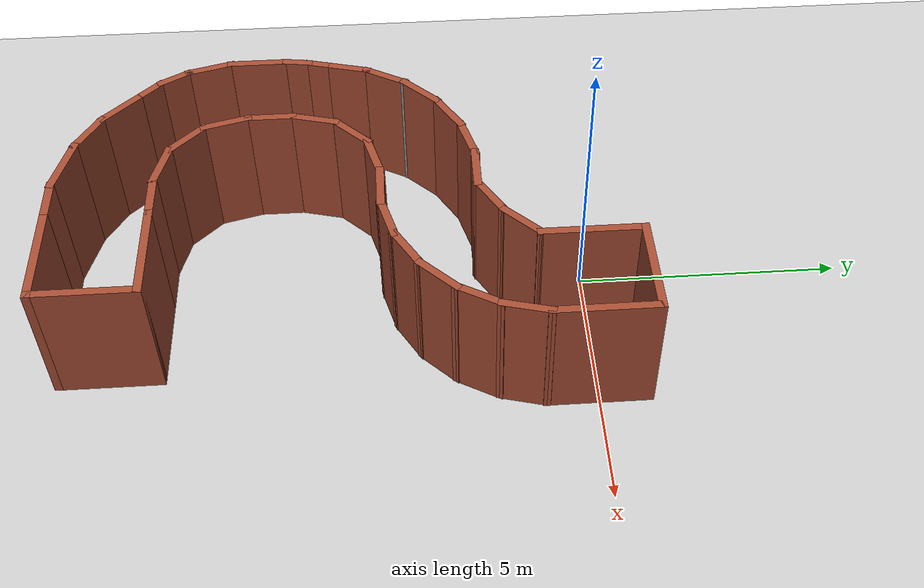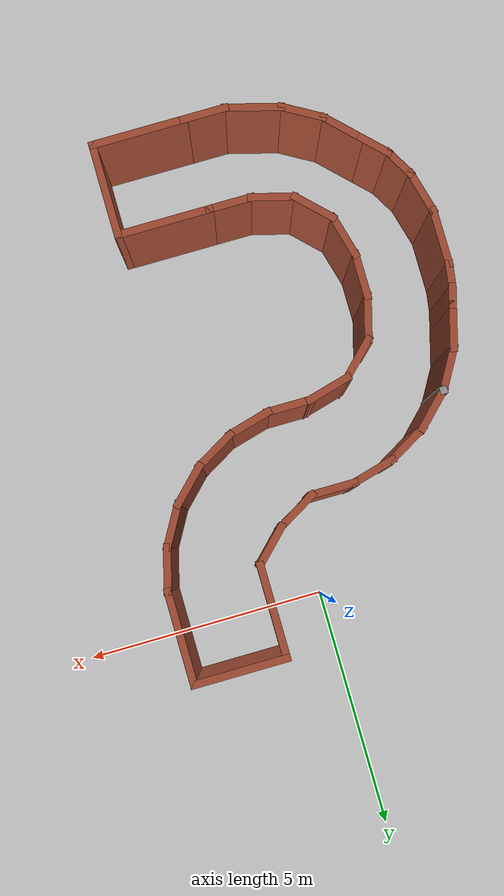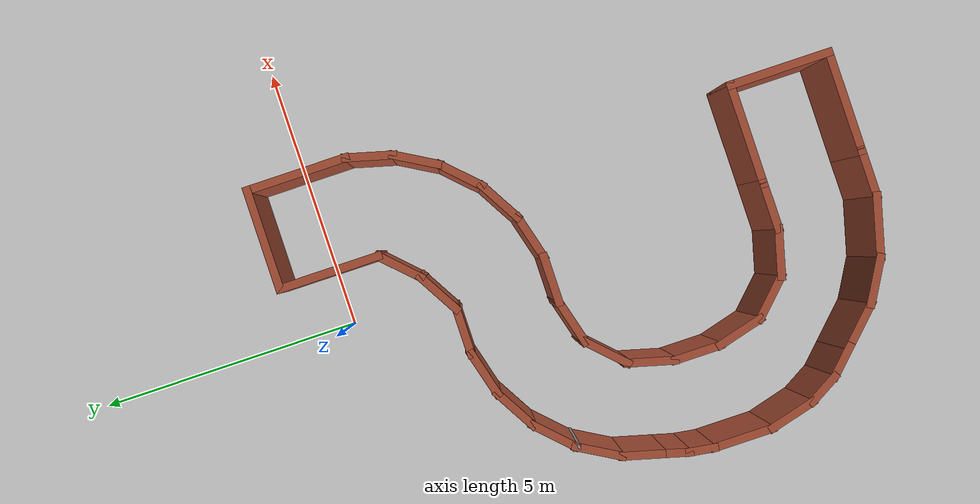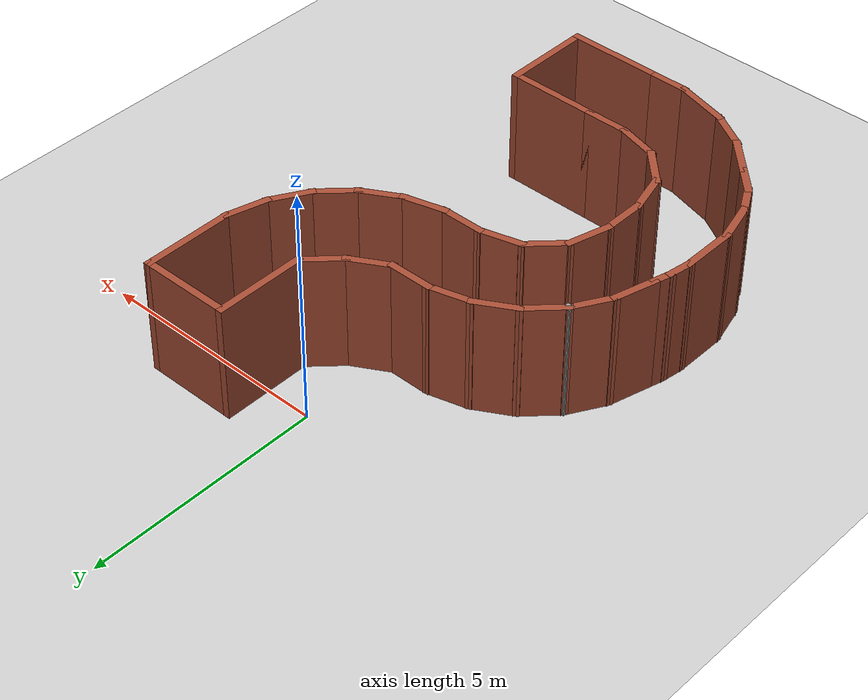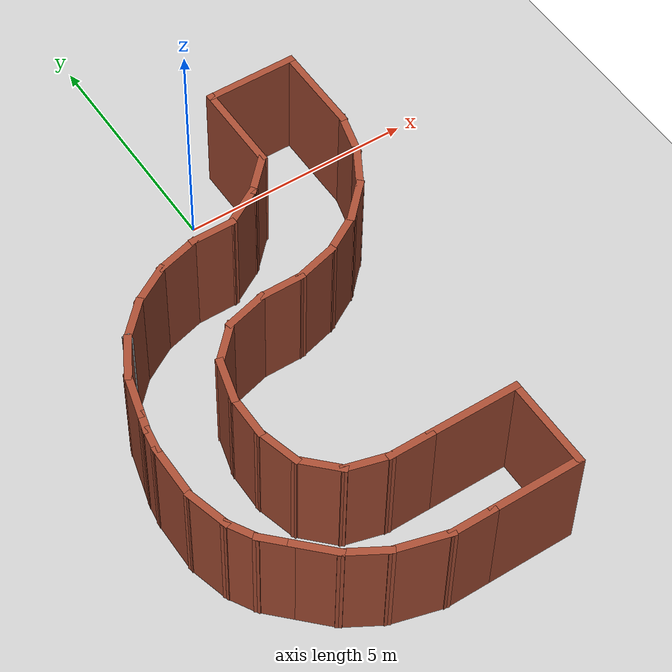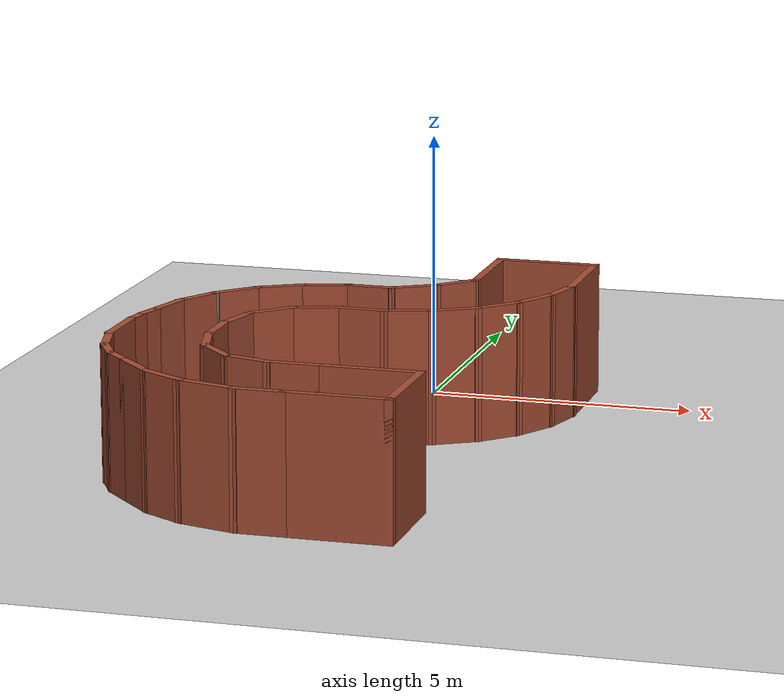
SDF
<sdf version="1.6">
 <world name="default">
  <light name="sun" type="directional">
   <pose>0 0 10 0 -0 0</pose>
   <diffuse>0.8 0.8 0.8 1</diffuse>
   <specular>0.2 0.2 0.2 1</specular>
   <attenuation>
    <range>1000</range>
    <constant>0.9</constant>
    <linear>0.01</linear>
    <quadratic>0.001</quadratic>
   </attenuation>
   <direction>-0.5 0.1 -0.9</direction>
  </light>
  <model name="ground_plane">
   <static>1</static>
   <link name="link">
    <collision name="collision">
     <geometry><plane><normal>0 0 1</normal><size>100 100</size></plane></geometry>
     <surface>
      <contact><collide_bitmask>65535</collide_bitmask></contact>
      <friction><ode><mu>100</mu><mu2>50</mu2></ode></friction>
     </surface>
    </collision>
    <visual name="visual">
     <cast_shadows>0</cast_shadows>
     <geometry><plane><normal>0 0 1</normal><size>100 100</size></plane></geometry>
     <material>
      <script><uri>file://media/materials/scripts/gazebo.material</uri><name>Gazebo/Grey</name></script>
     </material>
    </visual>
   </link>
  </model>
  <gravity>0 0 -9.8</gravity>
  <magnetic_field>6e-06 2.3e-05 -4.2e-05</magnetic_field>
  <atmosphere type="adiabatic"/>
  <physics name="default_physics" default="0" type="ode">
   <max_step_size>0.001</max_step_size>
   <real_time_factor>1</real_time_factor>
   <real_time_update_rate>1000</real_time_update_rate>
  </physics>
  <scene><ambient>0.4 0.4 0.4 1</ambient><background>0.7 0.7 0.7 1</background><shadows>1</shadows></scene>
  <audio><device>default</device></audio>
  <spherical_coordinates>
   <surface_model>EARTH_WGS84</surface_model>
   <latitude_deg>0</latitude_deg>
   <longitude_deg>0</longitude_deg>
   <elevation>0</elevation>
   <heading_deg>0</heading_deg>
  </spherical_coordinates>
  <model name="simple_navigation">
   <pose>-0.584707 -4.41964 0 0 -0 0</pose>
   <link name="Wall_10">
    <collision name="Wall_10_Collision">
     <geometry><box><size>1 0.15 2.5</size></box></geometry>
     <pose>0 0 1.25 0 -0 0</pose>
    </collision>
    <visual name="Wall_10_Visual">
     <pose>0 0 1.25 0 -0 0</pose>
     <geometry><box><size>1 0.15 2.5</size></box></geometry>
     <material>
      <script><uri>file://media/materials/scripts/gazebo.material</uri><name>Gazebo/Bricks</name></script>
      <ambient>1 1 1 1</ambient>
     </material>
     <meta><layer>0</layer></meta>
    </visual>
    <pose>2.55305 1.61942 0 0 -0 -2.35619</pose>
   </link>
   <link name="Wall_11">
    <collision name="Wall_11_Collision">
     <geometry><box><size>1 0.15 2.5</size></box></geometry>
     <pose>0 0 1.25 0 -0 0</pose>
    </collision>
    <visual name="Wall_11_Visual">
     <pose>0 0 1.25 0 -0 0</pose>
     <geometry><box><size>1 0.15 2.5</size></box></geometry>
     <material>
      <script><uri>file://media/materials/scripts/gazebo.material</uri><name>Gazebo/Bricks</name></script>
      <ambient>1 1 1 1</ambient>
     </material>
     <meta><layer>0</layer></meta>
    </visual>
    <pose>1.88447 1.1064 0 0 -0 -2.61799</pose>
   </link>
   <link name="Wall_12">
    <collision name="Wall_12_Collision">
     <geometry><box><size>1 0.15 2.5</size></box></geometry>
     <pose>0 0 1.25 0 -0 0</pose>
    </collision>
    <visual name="Wall_12_Visual">
     <pose>0 0 1.25 0 -0 0</pose>
     <geometry><box><size>1 0.15 2.5</size></box></geometry>
     <material>
      <script><uri>file://media/materials/scripts/gazebo.material</uri><name>Gazebo/Bricks</name></script>
      <ambient>1 1 1 1</ambient>
     </material>
     <meta><layer>0</layer></meta>
    </visual>
    <pose>1.10589 0.783902 0 0 -0 -2.87979</pose>
   </link>
   <link name="Wall_13">
    <collision name="Wall_13_Collision">
     <geometry><box><size>1 0.15 2.5</size></box></geometry>
     <pose>0 0 1.25 0 -0 0</pose>
    </collision>
    <visual name="Wall_13_Visual">
     <pose>0 0 1.25 0 -0 0</pose>
     <geometry><box><size>1 0.15 2.5</size></box></geometry>
     <material>
      <script><uri>file://media/materials/scripts/gazebo.material</uri><name>Gazebo/Bricks</name></script>
      <ambient>1 1 1 1</ambient>
     </material>
     <meta><layer>0</layer></meta>
    </visual>
    <pose>0.270373 0.673904 0 0 -0 3.14159</pose>
   </link>
   <link name="Wall_14">
    <collision name="Wall_14_Collision">
     <geometry><box><size>1 0.15 2.5</size></box></geometry>
     <pose>0 0 1.25 0 -0 0</pose>
    </collision>
    <visual name="Wall_14_Visual">
     <pose>0 0 1.25 0 -0 0</pose>
     <geometry><box><size>1 0.15 2.5</size></box></geometry>
     <material>
      <script><uri>file://media/materials/scripts/gazebo.material</uri><name>Gazebo/Bricks</name></script>
      <ambient>1 1 1 1</ambient>
     </material>
     <meta><layer>0</layer></meta>
    </visual>
    <pose>-0.565146 0.563906 0 0 -0 -2.87979</pose>
   </link>
   <link name="Wall_15">
    <collision name="Wall_15_Collision">
     <geometry><box><size>1 0.15 2.5</size></box></geometry>
     <pose>0 0 1.25 0 -0 0</pose>
    </collision>
    <visual name="Wall_15_Visual">
     <pose>0 0 1.25 0 -0 0</pose>
     <geometry><box><size>1 0.15 2.5</size></box></geometry>
     <material>
      <script><uri>file://media/materials/scripts/gazebo.material</uri><name>Gazebo/Bricks</name></script>
      <ambient>1 1 1 1</ambient>
     </material>
     <meta><layer>0</layer></meta>
    </visual>
    <pose>-1.27618 0.153387 0 0 -0 -2.35619</pose>
   </link>
   <link name="Wall_16">
    <collision name="Wall_16_Collision">
     <geometry><box><size>1 0.15 2.5</size></box></geometry>
     <pose>0 0 1.25 0 -0 0</pose>
    </collision>
    <visual name="Wall_16_Visual">
     <pose>0 0 1.25 0 -0 0</pose>
     <geometry><box><size>1 0.15 2.5</size></box></geometry>
     <material>
      <script><uri>file://media/materials/scripts/gazebo.material</uri><name>Gazebo/Bricks</name></script>
      <ambient>1 1 1 1</ambient>
     </material>
     <meta><layer>0</layer></meta>
    </visual>
    <pose>-1.6867 -0.557651 0 0 -0 -1.8326</pose>
   </link>
   <link name="Wall_17">
    <collision name="Wall_17_Collision">
     <geometry><box><size>1 0.15 2.5</size></box></geometry>
     <pose>0 0 1.25 0 -0 0</pose>
    </collision>
    <visual name="Wall_17_Visual">
     <pose>0 0 1.25 0 -0 0</pose>
     <geometry><box><size>1 0.15 2.5</size></box></geometry>
     <material>
      <script><uri>file://media/materials/scripts/gazebo.material</uri><name>Gazebo/Bricks</name></script>
      <ambient>1 1 1 1</ambient>
     </material>
     <meta><layer>0</layer></meta>
    </visual>
    <pose>-1.7967 -1.39317 0 0 -0 -1.5708</pose>
   </link>
   <link name="Wall_18">
    <collision name="Wall_18_Collision">
     <geometry><box><size>1 0.15 2.5</size></box></geometry>
     <pose>0 0 1.25 0 -0 0</pose>
    </collision>
    <visual name="Wall_18_Visual">
     <pose>0 0 1.25 0 -0 0</pose>
     <geometry><box><size>1 0.15 2.5</size></box></geometry>
     <material>
      <script><uri>file://media/materials/scripts/gazebo.material</uri><name>Gazebo/Bricks</name></script>
      <ambient>1 1 1 1</ambient>
     </material>
     <meta><layer>0</layer></meta>
    </visual>
    <pose>-1.6867 -2.22869 0 0 -0 -1.309</pose>
   </link>
   <link name="Wall_19">
    <collision name="Wall_19_Collision">
     <geometry><box><size>1 0.15 2.5</size></box></geometry>
     <pose>0 0 1.25 0 -0 0</pose>
    </collision>
    <visual name="Wall_19_Visual">
     <pose>0 0 1.25 0 -0 0</pose>
     <geometry><box><size>1 0.15 2.5</size></box></geometry>
     <material>
      <script><uri>file://media/materials/scripts/gazebo.material</uri><name>Gazebo/Bricks</name></script>
      <ambient>1 1 1 1</ambient>
     </material>
     <meta><layer>0</layer></meta>
    </visual>
    <pose>-1.27618 -2.93973 0 0 -0 -0.785398</pose>
   </link>
   <link name="Wall_2">
    <collision name="Wall_2_Collision">
     <geometry><box><size>2 0.15 2.5</size></box></geometry>
     <pose>0 0 1.25 0 -0 0</pose>
    </collision>
    <visual name="Wall_2_Visual">
     <pose>0 0 1.25 0 -0 0</pose>
     <geometry><box><size>2 0.15 2.5</size></box></geometry>
     <material>
      <script><uri>file://media/materials/scripts/gazebo.material</uri><name>Gazebo/Bricks</name></script>
      <ambient>1 1 1 1</ambient>
     </material>
     <meta><layer>0</layer></meta>
    </visual>
    <pose>1.64857 4.4021 0 0 -0 1.5708</pose>
   </link>
   <link name="Wall_20">
    <collision name="Wall_20_Collision">
     <geometry><box><size>1 0.15 2.5</size></box></geometry>
     <pose>0 0 1.25 0 -0 0</pose>
    </collision>
    <visual name="Wall_20_Visual">
     <pose>0 0 1.25 0 -0 0</pose>
     <geometry><box><size>1 0.15 2.5</size></box></geometry>
     <material>
      <script><uri>file://media/materials/scripts/gazebo.material</uri><name>Gazebo/Bricks</name></script>
      <ambient>1 1 1 1</ambient>
     </material>
     <meta><layer>0</layer></meta>
    </visual>
    <pose>-0.565146 -3.35025 0 0 -0 -0.261799</pose>
   </link>
   <link name="Wall_21">
    <collision name="Wall_21_Collision">
     <geometry><box><size>1 0.15 2.5</size></box></geometry>
     <pose>0 0 1.25 0 -0 0</pose>
    </collision>
    <visual name="Wall_21_Visual">
     <pose>0 0 1.25 0 -0 0</pose>
     <geometry><box><size>1 0.15 2.5</size></box></geometry>
     <material>
      <script><uri>file://media/materials/scripts/gazebo.material</uri><name>Gazebo/Bricks</name></script>
      <ambient>1 1 1 1</ambient>
     </material>
     <meta><layer>0</layer></meta>
    </visual>
    <pose>0.270373 -3.46024 0 0 -0 0</pose>
   </link>
   <link name="Wall_22">
    <collision name="Wall_22_Collision">
     <geometry><box><size>2 0.15 2.5</size></box></geometry>
     <pose>0 0 1.25 0 -0 0</pose>
    </collision>
    <visual name="Wall_22_Visual">
     <pose>0 0 1.25 0 -0 0</pose>
     <geometry><box><size>2 0.15 2.5</size></box></geometry>
     <material>
      <script><uri>file://media/materials/scripts/gazebo.material</uri><name>Gazebo/Bricks</name></script>
      <ambient>1 1 1 1</ambient>
     </material>
     <meta><layer>0</layer></meta>
    </visual>
    <pose>1.62037 -3.46024 0 0 -0 0</pose>
   </link>
   <link name="Wall_23">
    <collision name="Wall_23_Collision">
     <geometry><box><size>2 0.15 2.5</size></box></geometry>
     <pose>0 0 1.25 0 -0 0</pose>
    </collision>
    <visual name="Wall_23_Visual">
     <pose>0 0 1.25 0 -0 0</pose>
     <geometry><box><size>2 0.15 2.5</size></box></geometry>
     <material>
      <script><uri>file://media/materials/scripts/gazebo.material</uri><name>Gazebo/Bricks</name></script>
      <ambient>1 1 1 1</ambient>
     </material>
     <meta><layer>0</layer></meta>
    </visual>
    <pose>2.54537 -4.38524 0 0 -0 -1.5708</pose>
   </link>
   <link name="Wall_24">
    <collision name="Wall_24_Collision">
     <geometry><box><size>2 0.15 2.5</size></box></geometry>
     <pose>0 0 1.25 0 -0 0</pose>
    </collision>
    <visual name="Wall_24_Visual">
     <pose>0 0 1.25 0 -0 0</pose>
     <geometry><box><size>2 0.15 2.5</size></box></geometry>
     <material>
      <script><uri>file://media/materials/scripts/gazebo.material</uri><name>Gazebo/Bricks</name></script>
      <ambient>1 1 1 1</ambient>
     </material>
     <meta><layer>0</layer></meta>
    </visual>
    <pose>1.62037 -5.31024 0 0 -0 3.14159</pose>
   </link>
   <link name="Wall_25">
    <collision name="Wall_25_Collision">
     <geometry><box><size>1 0.15 2.5</size></box></geometry>
     <pose>0 0 1.25 0 -0 0</pose>
    </collision>
    <visual name="Wall_25_Visual">
     <pose>0 0 1.25 0 -0 0</pose>
     <geometry><box><size>1 0.15 2.5</size></box></geometry>
     <material>
      <script><uri>file://media/materials/scripts/gazebo.material</uri><name>Gazebo/Bricks</name></script>
      <ambient>1 1 1 1</ambient>
     </material>
     <meta><layer>0</layer></meta>
    </visual>
    <pose>0.270373 -5.31024 0 0 -0 3.14159</pose>
   </link>
   <link name="Wall_30">
    <collision name="Wall_30_Collision">
     <geometry><box><size>1 0.15 2.5</size></box></geometry>
     <pose>0 0 1.25 0 -0 0</pose>
    </collision>
    <visual name="Wall_30_Visual">
     <pose>0 0 1.25 0 -0 0</pose>
     <geometry><box><size>1 0.15 2.5</size></box></geometry>
     <material>
      <script><uri>file://media/materials/scripts/gazebo.material</uri><name>Gazebo/Bricks</name></script>
      <ambient>1 1 1 1</ambient>
     </material>
     <meta><layer>0</layer></meta>
    </visual>
    <pose>1.34805 3.17658 0 0 -0 -2.35619</pose>
   </link>
   <link name="Wall_31">
    <collision name="Wall_31_Collision">
     <geometry><box><size>1 0.15 2.5</size></box></geometry>
     <pose>0 0 1.25 0 -0 0</pose>
    </collision>
    <visual name="Wall_31_Visual">
     <pose>0 0 1.25 0 -0 0</pose>
     <geometry><box><size>1 0.15 2.5</size></box></geometry>
     <material>
      <script><uri>file://media/materials/scripts/gazebo.material</uri><name>Gazebo/Bricks</name></script>
      <ambient>1 1 1 1</ambient>
     </material>
     <meta><layer>0</layer></meta>
    </visual>
    <pose>0.679466 2.66356 0 0 -0 -2.61799</pose>
   </link>
   <link name="Wall_32">
    <collision name="Wall_32_Collision">
     <geometry><box><size>1 0.15 2.5</size></box></geometry>
     <pose>0 0 1.25 0 -0 0</pose>
    </collision>
    <visual name="Wall_32_Visual">
     <pose>0 0 1.25 0 -0 0</pose>
     <geometry><box><size>1 0.15 2.5</size></box></geometry>
     <material>
      <script><uri>file://media/materials/scripts/gazebo.material</uri><name>Gazebo/Bricks</name></script>
      <ambient>1 1 1 1</ambient>
     </material>
     <meta><layer>0</layer></meta>
    </visual>
    <pose>-0.113594 2.45106 0 0 -0 3.14159</pose>
   </link>
   <link name="Wall_34">
    <collision name="Wall_34_Collision">
     <geometry><box><size>1 0.15 2.5</size></box></geometry>
     <pose>0 0 1.25 0 -0 0</pose>
    </collision>
    <visual name="Wall_34_Visual">
     <pose>0 0 1.25 0 -0 0</pose>
     <geometry><box><size>1 0.15 2.5</size></box></geometry>
     <material>
      <script><uri>file://media/materials/scripts/gazebo.material</uri><name>Gazebo/Bricks</name></script>
      <ambient>1 1 1 1</ambient>
     </material>
     <meta><layer>0</layer></meta>
    </visual>
    <pose>-0.949113 2.34106 0 0 -0 -2.87979</pose>
   </link>
   <link name="Wall_35">
    <collision name="Wall_35_Collision">
     <geometry><box><size>1 0.15 2.5</size></box></geometry>
     <pose>0 0 1.25 0 -0 0</pose>
    </collision>
    <visual name="Wall_35_Visual">
     <pose>0 0 1.25 0 -0 0</pose>
     <geometry><box><size>1 0.15 2.5</size></box></geometry>
     <material>
      <script><uri>file://media/materials/scripts/gazebo.material</uri><name>Gazebo/Bricks</name></script>
      <ambient>1 1 1 1</ambient>
     </material>
     <meta><layer>0</layer></meta>
    </visual>
    <pose>-1.72769 2.01856 0 0 -0 -2.61799</pose>
   </link>
   <link name="Wall_37">
    <collision name="Wall_37_Collision">
     <geometry><box><size>1 0.15 2.5</size></box></geometry>
     <pose>0 0 1.25 0 -0 0</pose>
    </collision>
    <visual name="Wall_37_Visual">
     <pose>0 0 1.25 0 -0 0</pose>
     <geometry><box><size>1 0.15 2.5</size></box></geometry>
     <material>
      <script><uri>file://media/materials/scripts/gazebo.material</uri><name>Gazebo/Bricks</name></script>
      <ambient>1 1 1 1</ambient>
     </material>
     <meta><layer>0</layer></meta>
    </visual>
    <pose>-2.39627 1.50554 0 0 -0 -2.35619</pose>
   </link>
   <link name="Wall_38">
    <collision name="Wall_38_Collision">
     <geometry><box><size>0.15 0.15 2.5</size></box></geometry>
     <pose>0 0 1.25 0 -0 0</pose>
    </collision>
    <visual name="Wall_38_Visual">
     <pose>0 0 1.25 0 -0 0</pose>
     <geometry><box><size>0.15 0.15 2.5</size></box></geometry>
     <material>
      <script><uri>file://media/materials/scripts/gazebo.material</uri><name>Gazebo/Grey</name></script>
      <ambient>1 1 1 1</ambient>
     </material>
     <meta><layer>0</layer></meta>
    </visual>
    <pose>-2.69679 1.20502 0 0 -0 0</pose>
   </link>
   <link name="Wall_39">
    <collision name="Wall_39_Collision">
     <geometry><box><size>1 0.15 2.5</size></box></geometry>
     <pose>0 0 1.25 0 -0 0</pose>
    </collision>
    <visual name="Wall_39_Visual">
     <pose>0 0 1.25 0 -0 0</pose>
     <geometry><box><size>1 0.15 2.5</size></box></geometry>
     <material>
      <script><uri>file://media/materials/scripts/gazebo.material</uri><name>Gazebo/Bricks</name></script>
      <ambient>1 1 1 1</ambient>
     </material>
     <meta><layer>0</layer></meta>
    </visual>
    <pose>-2.90929 0.836961 0 0 -0 -2.0944</pose>
   </link>
   <link name="Wall_4">
    <collision name="Wall_4_Collision">
     <geometry><box><size>2 0.15 2.5</size></box></geometry>
     <pose>0 0 1.25 0 -0 0</pose>
    </collision>
    <visual name="Wall_4_Visual">
     <pose>0 0 1.25 0 -0 0</pose>
     <geometry><box><size>2 0.15 2.5</size></box></geometry>
     <material>
      <script><uri>file://media/materials/scripts/gazebo.material</uri><name>Gazebo/Bricks</name></script>
      <ambient>1 1 1 1</ambient>
     </material>
     <meta><layer>0</layer></meta>
    </visual>
    <pose>2.57357 5.3271 0 0 -0 0</pose>
   </link>
   <link name="Wall_40">
    <collision name="Wall_40_Collision">
     <geometry><box><size>1 0.15 2.5</size></box></geometry>
     <pose>0 0 1.25 0 -0 0</pose>
    </collision>
    <visual name="Wall_40_Visual">
     <pose>0 0 1.25 0 -0 0</pose>
     <geometry><box><size>1 0.15 2.5</size></box></geometry>
     <material>
      <script><uri>file://media/materials/scripts/gazebo.material</uri><name>Gazebo/Bricks</name></script>
      <ambient>1 1 1 1</ambient>
     </material>
     <meta><layer>0</layer></meta>
    </visual>
    <pose>-3.23179 0.058382 0 0 -0 -1.8326</pose>
   </link>
   <link name="Wall_41">
    <collision name="Wall_41_Collision">
     <geometry><box><size>0.5 0.15 2.5</size></box></geometry>
     <pose>0 0 1.25 0 -0 0</pose>
    </collision>
    <visual name="Wall_41_Visual">
     <pose>0 0 1.25 0 -0 0</pose>
     <geometry><box><size>0.5 0.15 2.5</size></box></geometry>
     <material>
      <script><uri>file://media/materials/scripts/gazebo.material</uri><name>Gazebo/Bricks</name></script>
      <ambient>1 1 1 1</ambient>
     </material>
     <meta><layer>0</layer></meta>
    </visual>
    <pose>-3.38708 -0.521174 0 0 -0 -1.8326</pose>
   </link>
   <link name="Wall_48">
    <collision name="Wall_48_Collision">
     <geometry><box><size>1.25 0.15 2.5</size></box></geometry>
     <pose>0 0 1.25 0 -0 0</pose>
    </collision>
    <visual name="Wall_48_Visual">
     <pose>0 0 1.25 0 -0 0</pose>
     <geometry><box><size>1.25 0.15 2.5</size></box></geometry>
     <material>
      <script><uri>file://media/materials/scripts/gazebo.material</uri><name>Gazebo/Bricks</name></script>
      <ambient>1 1 1 1</ambient>
     </material>
     <meta><layer>0</layer></meta>
    </visual>
    <pose>-0.685887 -5.16789 0 0 -0 2.87979</pose>
   </link>
   <link name="Wall_49">
    <collision name="Wall_49_Collision">
     <geometry><box><size>1 0.15 2.5</size></box></geometry>
     <pose>0 0 1.25 0 -0 0</pose>
    </collision>
    <visual name="Wall_49_Visual">
     <pose>0 0 1.25 0 -0 0</pose>
     <geometry><box><size>1 0.15 2.5</size></box></geometry>
     <material>
      <script><uri>file://media/materials/scripts/gazebo.material</uri><name>Gazebo/Bricks</name></script>
      <ambient>1 1 1 1</ambient>
     </material>
     <meta><layer>0</layer></meta>
    </visual>
    <pose>-1.58521 -4.81304 0 0 -0 2.61799</pose>
   </link>
   <link name="Wall_50">
    <collision name="Wall_50_Collision">
     <geometry><box><size>1 0.15 2.5</size></box></geometry>
     <pose>0 0 1.25 0 -0 0</pose>
    </collision>
    <visual name="Wall_50_Visual">
     <pose>0 0 1.25 0 -0 0</pose>
     <geometry><box><size>1 0.15 2.5</size></box></geometry>
     <material>
      <script><uri>file://media/materials/scripts/gazebo.material</uri><name>Gazebo/Bricks</name></script>
      <ambient>1 1 1 1</ambient>
     </material>
     <meta><layer>0</layer></meta>
    </visual>
    <pose>-2.25379 -4.30002 0 0 -0 2.35619</pose>
   </link>
   <link name="Wall_51">
    <collision name="Wall_51_Collision">
     <geometry><box><size>0.75 0.15 2.5</size></box></geometry>
     <pose>0 0 1.25 0 -0 0</pose>
    </collision>
    <visual name="Wall_51_Visual">
     <pose>0 0 1.25 0 -0 0</pose>
     <geometry><box><size>0.75 0.15 2.5</size></box></geometry>
     <material>
      <script><uri>file://media/materials/scripts/gazebo.material</uri><name>Gazebo/Bricks</name></script>
      <ambient>1 1 1 1</ambient>
     </material>
     <meta><layer>0</layer></meta>
    </visual>
    <pose>-2.76644 -3.78737 0 0 -0 2.35619</pose>
   </link>
   <link name="Wall_52">
    <collision name="Wall_52_Collision">
     <geometry><box><size>0.75 0.15 2.5</size></box></geometry>
     <pose>0 0 1.25 0 -0 0</pose>
    </collision>
    <visual name="Wall_52_Visual">
     <pose>0 0 1.25 0 -0 0</pose>
     <geometry><box><size>0.75 0.15 2.5</size></box></geometry>
     <material>
      <script><uri>file://media/materials/scripts/gazebo.material</uri><name>Gazebo/Bricks</name></script>
      <ambient>1 1 1 1</ambient>
     </material>
     <meta><layer>0</layer></meta>
    </visual>
    <pose>-3.12857 -3.31543 0 0 -0 2.0944</pose>
   </link>
   <link name="Wall_53">
    <collision name="Wall_53_Collision">
     <geometry><box><size>1 0.15 2.5</size></box></geometry>
     <pose>0 0 1.25 0 -0 0</pose>
    </collision>
    <visual name="Wall_53_Visual">
     <pose>0 0 1.25 0 -0 0</pose>
     <geometry><box><size>1 0.15 2.5</size></box></geometry>
     <material>
      <script><uri>file://media/materials/scripts/gazebo.material</uri><name>Gazebo/Bricks</name></script>
      <ambient>1 1 1 1</ambient>
     </material>
     <meta><layer>0</layer></meta>
    </visual>
    <pose>-3.38857 -2.6451 0 0 -0 1.8326</pose>
   </link>
   <link name="Wall_55">
    <collision name="Wall_55_Collision">
     <geometry><box><size>1.25 0.15 2.5</size></box></geometry>
     <pose>0 0 1.25 0 -0 0</pose>
    </collision>
    <visual name="Wall_55_Visual">
     <pose>0 0 1.25 0 -0 0</pose>
     <geometry><box><size>1.25 0.15 2.5</size></box></geometry>
     <material>
      <script><uri>file://media/materials/scripts/gazebo.material</uri><name>Gazebo/Bricks</name></script>
      <ambient>1 1 1 1</ambient>
     </material>
     <meta><layer>0</layer></meta>
    </visual>
    <pose>-3.49857 -1.68459 0 0 -0 1.5708</pose>
   </link>
   <link name="Wall_56">
    <collision name="Wall_56_Collision">
     <geometry><box><size>0.599278 0.15 2.5</size></box></geometry>
     <pose>0 0 1.25 0 -0 0</pose>
    </collision>
    <visual name="Wall_56_Visual">
     <pose>0 0 1.25 0 -0 0</pose>
     <geometry><box><size>0.599278 0.15 2.5</size></box></geometry>
     <material>
      <script><uri>file://media/materials/scripts/gazebo.material</uri><name>Gazebo/Bricks</name></script>
      <ambient>1 1 1 1</ambient>
     </material>
     <meta><layer>0</layer></meta>
    </visual>
    <pose>-3.46547 -0.912398 0 0 -0 1.42293</pose>
   </link>
   <link name="Wall_7">
    <collision name="Wall_7_Collision">
     <geometry><box><size>2 0.15 2.5</size></box></geometry>
     <pose>0 0 1.25 0 -0 0</pose>
    </collision>
    <visual name="Wall_7_Visual">
     <pose>0 0 1.25 0 -0 0</pose>
     <geometry><box><size>2 0.15 2.5</size></box></geometry>
     <material>
      <script><uri>file://media/materials/scripts/gazebo.material</uri><name>Gazebo/Bricks</name></script>
      <ambient>1 1 1 1</ambient>
     </material>
     <meta><layer>0</layer></meta>
    </visual>
    <pose>3.49857 4.4021 0 0 -0 -1.5708</pose>
   </link>
   <link name="Wall_8">
    <collision name="Wall_8_Collision">
     <geometry><box><size>1 0.15 2.5</size></box></geometry>
     <pose>0 0 1.25 0 -0 0</pose>
    </collision>
    <visual name="Wall_8_Visual">
     <pose>0 0 1.25 0 -0 0</pose>
     <geometry><box><size>1 0.15 2.5</size></box></geometry>
     <material>
      <script><uri>file://media/materials/scripts/gazebo.material</uri><name>Gazebo/Bricks</name></script>
      <ambient>1 1 1 1</ambient>
     </material>
     <meta><layer>0</layer></meta>
    </visual>
    <pose>3.38857 3.06658 0 0 -0 -1.8326</pose>
   </link>
   <link name="Wall_9">
    <collision name="Wall_9_Collision">
     <geometry><box><size>1 0.15 2.5</size></box></geometry>
     <pose>0 0 1.25 0 -0 0</pose>
    </collision>
    <visual name="Wall_9_Visual">
     <pose>0 0 1.25 0 -0 0</pose>
     <geometry><box><size>1 0.15 2.5</size></box></geometry>
     <material>
      <script><uri>file://media/materials/scripts/gazebo.material</uri><name>Gazebo/Bricks</name></script>
      <ambient>1 1 1 1</ambient>
     </material>
     <meta><layer>0</layer></meta>
    </visual>
    <pose>3.06607 2.288 0 0 -0 -2.0944</pose>
   </link>
   <static>1</static>
  </model>
 </world>
</sdf>
